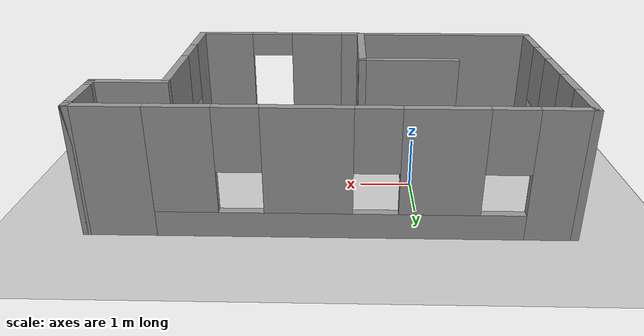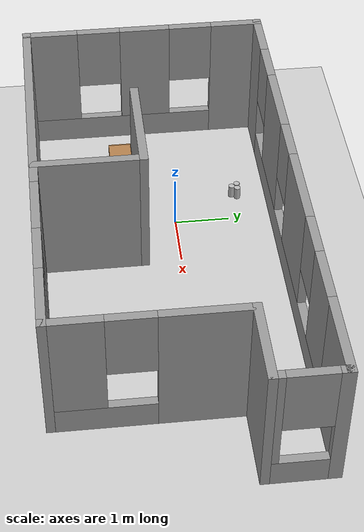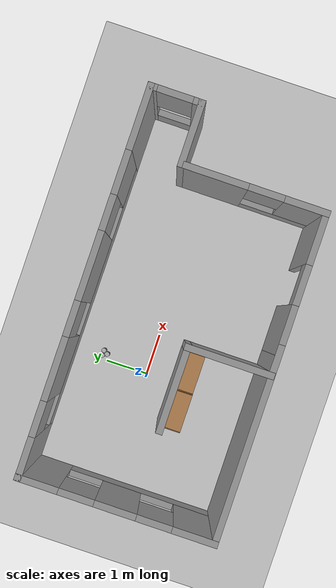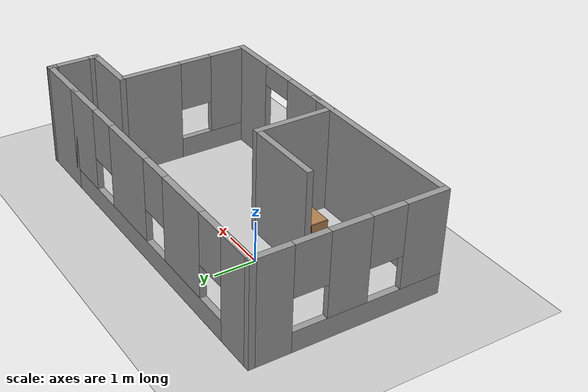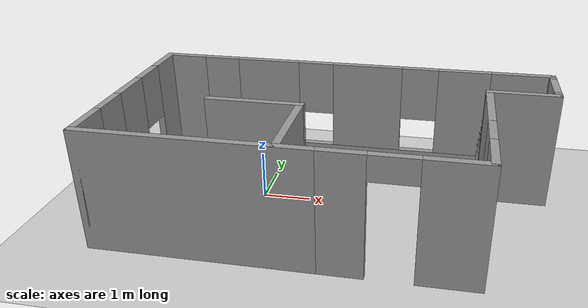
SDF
<sdf version="1.6">
 <world name="default">
  <light name="sun" type="directional">
   <pose>0 0 15 0 -0 0</pose>
   <diffuse>0.8 0.8 0.8 1</diffuse>
   <specular>0.2 0.2 0.2 1</specular>
   <attenuation>
    <range>1000</range>
    <constant>0.9</constant>
    <linear>0.01</linear>
    <quadratic>0.001</quadratic>
   </attenuation>
   <direction>-0.5 0.1 -0.9</direction>
  </light>
  <model name="ground_plane">
   <static>1</static>
   <link name="link">
    <collision name="collision">
     <geometry><plane><normal>0 0 1</normal><size>100 100</size></plane></geometry>
     <surface><friction><ode><mu>100</mu><mu2>50</mu2></ode></friction></surface>
    </collision>
    <visual name="visual">
     <transparency>1</transparency>
     <cast_shadows>0</cast_shadows>
     <geometry><plane><normal>0 0 1</normal><size>100 100</size></plane></geometry>
     <material>
      <script><uri>file://media/materials/scripts/gazebo.material</uri><name>Gazebo/Grey</name></script>
     </material>
    </visual>
   </link>
  </model>
  <gravity>0 0 -9.8</gravity>
  <magnetic_field>6e-06 2.3e-05 -4.2e-05</magnetic_field>
  <atmosphere type="adiabatic"/>
  <physics name="default_physics" default="0" type="ode">
   <max_step_size>0.001</max_step_size>
   <real_time_factor>1</real_time_factor>
   <real_time_update_rate>1000</real_time_update_rate>
  </physics>
  <scene><ambient>0.4 0.4 0.4 1</ambient><background>0.7 0.7 0.7 1</background><shadows>1</shadows></scene>
  <spherical_coordinates>
   <surface_model>EARTH_WGS84</surface_model>
   <latitude_deg>0</latitude_deg>
   <longitude_deg>0</longitude_deg>
   <elevation>0</elevation>
   <heading_deg>0</heading_deg>
  </spherical_coordinates>
  <model name="my_weird_house">
   <pose>1.61501 -0.331555 0 0 -0 0</pose>
   <link name="Wall_11">
    <collision name="Wall_11_Collision">
     <geometry><box><size>1.5 0.15 2.5</size></box></geometry>
     <pose>0 0 1.25 0 -0 0</pose>
    </collision>
    <visual name="Wall_11_Visual">
     <pose>0 0 1.25 0 -0 0</pose>
     <geometry><box><size>1.5 0.15 2.5</size></box></geometry>
     <material>
      <script><uri>file://media/materials/scripts/gazebo.material</uri><name>Gazebo/Grey</name></script>
      <ambient>1 1 1 1</ambient>
     </material>
     <meta><layer>0</layer></meta>
    </visual>
    <pose>3.675 2.185 0 0 -0 0</pose>
   </link>
   <link name="Wall_12">
    <pose>4.35 1.635 0 0 0 -1.5708</pose>
    <visual name="Wall_12_Visual_0">
     <pose>-0.5125 0 1.25 0 -0 0</pose>
     <geometry><box><size>0.225 0.15 2.5</size></box></geometry>
     <material>
      <script><uri>file://media/materials/scripts/gazebo.material</uri><name>Gazebo/Grey</name></script>
      <ambient>1 1 1 1</ambient>
     </material>
     <meta><layer>0</layer></meta>
    </visual>
    <collision name="Wall_12_Collision_0">
     <geometry><box><size>0.225 0.15 2.5</size></box></geometry>
     <pose>-0.5125 0 1.25 0 -0 0</pose>
    </collision>
    <visual name="Wall_12_Visual_1">
     <pose>0.1125 0 0.25 0 -0 0</pose>
     <geometry><box><size>1.025 0.15 0.5</size></box></geometry>
     <material>
      <script><uri>file://media/materials/scripts/gazebo.material</uri><name>Gazebo/Grey</name></script>
      <ambient>1 1 1 1</ambient>
     </material>
     <meta><layer>0</layer></meta>
    </visual>
    <collision name="Wall_12_Collision_1">
     <geometry><box><size>1.025 0.15 0.5</size></box></geometry>
     <pose>0.1125 0 0.25 0 -0 0</pose>
    </collision>
    <visual name="Wall_12_Visual_2">
     <pose>0.5125 0 1.5 0 -0 0</pose>
     <geometry><box><size>0.225 0.15 2</size></box></geometry>
     <material>
      <script><uri>file://media/materials/scripts/gazebo.material</uri><name>Gazebo/Grey</name></script>
      <ambient>1 1 1 1</ambient>
     </material>
     <meta><layer>0</layer></meta>
    </visual>
    <collision name="Wall_12_Collision_2">
     <geometry><box><size>0.225 0.15 2</size></box></geometry>
     <pose>0.5125 0 1.5 0 -0 0</pose>
    </collision>
    <visual name="Wall_12_Visual_3">
     <pose>0 0 1.9 0 -0 0</pose>
     <geometry><box><size>0.8 0.15 1.2</size></box></geometry>
     <material>
      <script><uri>file://media/materials/scripts/gazebo.material</uri><name>Gazebo/Grey</name></script>
      <ambient>1 1 1 1</ambient>
     </material>
     <meta><layer>0</layer></meta>
    </visual>
    <collision name="Wall_12_Collision_3">
     <geometry><box><size>0.8 0.15 1.2</size></box></geometry>
     <pose>0 0 1.9 0 -0 0</pose>
    </collision>
   </link>
   <link name="Wall_15">
    <pose>3 -0.625 0 0 0 -1.5708</pose>
    <visual name="Wall_15_Visual_0">
     <pose>-0.9025 0 1.25 0 -0 0</pose>
     <geometry><box><size>1.465 0.15 2.5</size></box></geometry>
     <material>
      <script><uri>file://media/materials/scripts/gazebo.material</uri><name>Gazebo/Grey</name></script>
      <ambient>1 1 1 1</ambient>
     </material>
     <meta><layer>0</layer></meta>
    </visual>
    <collision name="Wall_15_Collision_0">
     <geometry><box><size>1.465 0.15 2.5</size></box></geometry>
     <pose>-0.9025 0 1.25 0 -0 0</pose>
    </collision>
    <visual name="Wall_15_Visual_1">
     <pose>0.7325 0 0.25 0 -0 0</pose>
     <geometry><box><size>1.805 0.15 0.5</size></box></geometry>
     <material>
      <script><uri>file://media/materials/scripts/gazebo.material</uri><name>Gazebo/Grey</name></script>
      <ambient>1 1 1 1</ambient>
     </material>
     <meta><layer>0</layer></meta>
    </visual>
    <collision name="Wall_15_Collision_1">
     <geometry><box><size>1.805 0.15 0.5</size></box></geometry>
     <pose>0.7325 0 0.25 0 -0 0</pose>
    </collision>
    <visual name="Wall_15_Visual_2">
     <pose>1.1325 0 1.5 0 -0 0</pose>
     <geometry><box><size>1.005 0.15 2</size></box></geometry>
     <material>
      <script><uri>file://media/materials/scripts/gazebo.material</uri><name>Gazebo/Grey</name></script>
      <ambient>1 1 1 1</ambient>
     </material>
     <meta><layer>0</layer></meta>
    </visual>
    <collision name="Wall_15_Collision_2">
     <geometry><box><size>1.005 0.15 2</size></box></geometry>
     <pose>1.1325 0 1.5 0 -0 0</pose>
    </collision>
    <visual name="Wall_15_Visual_3">
     <pose>0.23 0 1.9 0 -0 0</pose>
     <geometry><box><size>0.8 0.15 1.2</size></box></geometry>
     <material>
      <script><uri>file://media/materials/scripts/gazebo.material</uri><name>Gazebo/Grey</name></script>
      <ambient>1 1 1 1</ambient>
     </material>
     <meta><layer>0</layer></meta>
    </visual>
    <collision name="Wall_15_Collision_3">
     <geometry><box><size>0.8 0.15 1.2</size></box></geometry>
     <pose>0.23 0 1.9 0 -0 0</pose>
    </collision>
   </link>
   <link name="Wall_18">
    <collision name="Wall_18_Collision">
     <geometry><box><size>1.5 0.15 2.5</size></box></geometry>
     <pose>0 0 1.25 0 -0 0</pose>
    </collision>
    <visual name="Wall_18_Visual">
     <pose>0 0 1.25 0 -0 0</pose>
     <geometry><box><size>1.5 0.15 2.5</size></box></geometry>
     <material>
      <script><uri>file://media/materials/scripts/gazebo.material</uri><name>Gazebo/Grey</name></script>
      <ambient>1 1 1 1</ambient>
     </material>
     <meta><layer>0</layer></meta>
    </visual>
    <pose>3.675 1.045 0 0 -0 0</pose>
   </link>
   <link name="Wall_2">
    <pose>-4.35 0 0 0 0 -1.5708</pose>
    <visual name="Wall_2_Visual_0">
     <pose>-1.77956 0 1.25 0 -0 0</pose>
     <geometry><box><size>0.960885 0.15 2.5</size></box></geometry>
     <material>
      <script><uri>file://media/materials/scripts/gazebo.material</uri><name>Gazebo/Grey</name></script>
      <ambient>1 1 1 1</ambient>
     </material>
     <meta><layer>0</layer></meta>
    </visual>
    <collision name="Wall_2_Collision_0">
     <geometry><box><size>0.960885 0.15 2.5</size></box></geometry>
     <pose>-1.77956 0 1.25 0 -0 0</pose>
    </collision>
    <visual name="Wall_2_Visual_1">
     <pose>0.480442 0 0.25 0 -0 0</pose>
     <geometry><box><size>3.55911 0.15 0.5</size></box></geometry>
     <material>
      <script><uri>file://media/materials/scripts/gazebo.material</uri><name>Gazebo/Grey</name></script>
      <ambient>1 1 1 1</ambient>
     </material>
     <meta><layer>0</layer></meta>
    </visual>
    <collision name="Wall_2_Collision_1">
     <geometry><box><size>3.55911 0.15 0.5</size></box></geometry>
     <pose>0.480442 0 0.25 0 -0 0</pose>
    </collision>
    <visual name="Wall_2_Visual_2">
     <pose>-0.030138 0 1.5 0 -0 0</pose>
     <geometry><box><size>0.937954 0.15 2</size></box></geometry>
     <material>
      <script><uri>file://media/materials/scripts/gazebo.material</uri><name>Gazebo/Grey</name></script>
      <ambient>1 1 1 1</ambient>
     </material>
     <meta><layer>0</layer></meta>
    </visual>
    <collision name="Wall_2_Collision_2">
     <geometry><box><size>0.937954 0.15 2</size></box></geometry>
     <pose>-0.030138 0 1.5 0 -0 0</pose>
    </collision>
    <visual name="Wall_2_Visual_3">
     <pose>1.74942 0 1.5 0 -0 0</pose>
     <geometry><box><size>1.02116 0.15 2</size></box></geometry>
     <material>
      <script><uri>file://media/materials/scripts/gazebo.material</uri><name>Gazebo/Grey</name></script>
      <ambient>1 1 1 1</ambient>
     </material>
     <meta><layer>0</layer></meta>
    </visual>
    <collision name="Wall_2_Collision_3">
     <geometry><box><size>1.02116 0.15 2</size></box></geometry>
     <pose>1.74942 0 1.5 0 -0 0</pose>
    </collision>
    <visual name="Wall_2_Visual_4">
     <pose>-0.899115 0 1.9 0 -0 0</pose>
     <geometry><box><size>0.8 0.15 1.2</size></box></geometry>
     <material>
      <script><uri>file://media/materials/scripts/gazebo.material</uri><name>Gazebo/Grey</name></script>
      <ambient>1 1 1 1</ambient>
     </material>
     <meta><layer>0</layer></meta>
    </visual>
    <collision name="Wall_2_Collision_4">
     <geometry><box><size>0.8 0.15 1.2</size></box></geometry>
     <pose>-0.899115 0 1.9 0 -0 0</pose>
    </collision>
    <visual name="Wall_2_Visual_5">
     <pose>0.838839 0 1.9 0 -0 0</pose>
     <geometry><box><size>0.8 0.15 1.2</size></box></geometry>
     <material>
      <script><uri>file://media/materials/scripts/gazebo.material</uri><name>Gazebo/Grey</name></script>
      <ambient>1 1 1 1</ambient>
     </material>
     <meta><layer>0</layer></meta>
    </visual>
    <collision name="Wall_2_Collision_5">
     <geometry><box><size>0.8 0.15 1.2</size></box></geometry>
     <pose>0.838839 0 1.9 0 -0 0</pose>
    </collision>
   </link>
   <link name="Wall_20">
    <collision name="Wall_20_Collision">
     <geometry><box><size>2 0.15 2.5</size></box></geometry>
     <pose>0 0 1.25 0 -0 0</pose>
    </collision>
    <visual name="Wall_20_Visual">
     <pose>0 0 1.25 0 -0 0</pose>
     <geometry><box><size>2 0.15 2.5</size></box></geometry>
     <material>
      <script><uri>file://media/materials/scripts/gazebo.material</uri><name>Gazebo/Grey</name></script>
      <ambient>1 1 1 1</ambient>
     </material>
     <meta><layer>0</layer></meta>
    </visual>
    <pose>-0.61 -1.25 0 0 -0 1.5708</pose>
   </link>
   <link name="Wall_21">
    <collision name="Wall_21_Collision">
     <geometry><box><size>2 0.15 2.5</size></box></geometry>
     <pose>0 0 1.25 0 -0 0</pose>
    </collision>
    <visual name="Wall_21_Visual">
     <pose>0 0 1.25 0 -0 0</pose>
     <geometry><box><size>2 0.15 2.5</size></box></geometry>
     <material>
      <script><uri>file://media/materials/scripts/gazebo.material</uri><name>Gazebo/Grey</name></script>
      <ambient>1 1 1 1</ambient>
     </material>
     <meta><layer>0</layer></meta>
    </visual>
    <pose>-1.535 -0.325 0 0 -0 3.14159</pose>
   </link>
   <link name="Wall_3">
    <collision name="Wall_3_Collision">
     <geometry><box><size>4.5 0.15 2.5</size></box></geometry>
     <pose>0 0 1.25 0 -0 0</pose>
    </collision>
    <visual name="Wall_3_Visual">
     <pose>0 0 1.25 0 -0 0</pose>
     <geometry><box><size>4.5 0.15 2.5</size></box></geometry>
     <material>
      <script><uri>file://media/materials/scripts/gazebo.material</uri><name>Gazebo/Grey</name></script>
      <ambient>1 1 1 1</ambient>
     </material>
     <meta><layer>0</layer></meta>
    </visual>
    <pose>-2.175 -2.185 0 0 -0 0</pose>
   </link>
   <link name="Wall_7">
    <pose>-0.675 2.185 0 0 -0 0</pose>
    <visual name="Wall_7_Visual_0">
     <pose>-3.2625 0 1.25 0 -0 0</pose>
     <geometry><box><size>0.975 0.15 2.5</size></box></geometry>
     <material>
      <script><uri>file://media/materials/scripts/gazebo.material</uri><name>Gazebo/Grey</name></script>
      <ambient>1 1 1 1</ambient>
     </material>
     <meta><layer>0</layer></meta>
    </visual>
    <collision name="Wall_7_Collision_0">
     <geometry><box><size>0.975 0.15 2.5</size></box></geometry>
     <pose>-3.2625 0 1.25 0 -0 0</pose>
    </collision>
    <visual name="Wall_7_Visual_1">
     <pose>0.4875 0 0.25 0 -0 0</pose>
     <geometry><box><size>6.525 0.15 0.5</size></box></geometry>
     <material>
      <script><uri>file://media/materials/scripts/gazebo.material</uri><name>Gazebo/Grey</name></script>
      <ambient>1 1 1 1</ambient>
     </material>
     <meta><layer>0</layer></meta>
    </visual>
    <collision name="Wall_7_Collision_1">
     <geometry><box><size>6.525 0.15 0.5</size></box></geometry>
     <pose>0.4875 0 0.25 0 -0 0</pose>
    </collision>
    <visual name="Wall_7_Visual_2">
     <pose>-1.26 0 1.5 0 -0 0</pose>
     <geometry><box><size>1.43 0.15 2</size></box></geometry>
     <material>
      <script><uri>file://media/materials/scripts/gazebo.material</uri><name>Gazebo/Grey</name></script>
      <ambient>1 1 1 1</ambient>
     </material>
     <meta><layer>0</layer></meta>
    </visual>
    <collision name="Wall_7_Collision_2">
     <geometry><box><size>1.43 0.15 2</size></box></geometry>
     <pose>-1.26 0 1.5 0 -0 0</pose>
    </collision>
    <visual name="Wall_7_Visual_3">
     <pose>1.035 0 1.5 0 -0 0</pose>
     <geometry><box><size>1.56 0.15 2</size></box></geometry>
     <material>
      <script><uri>file://media/materials/scripts/gazebo.material</uri><name>Gazebo/Grey</name></script>
      <ambient>1 1 1 1</ambient>
     </material>
     <meta><layer>0</layer></meta>
    </visual>
    <collision name="Wall_7_Collision_3">
     <geometry><box><size>1.56 0.15 2</size></box></geometry>
     <pose>1.035 0 1.5 0 -0 0</pose>
    </collision>
    <visual name="Wall_7_Visual_4">
     <pose>3.1825 0 1.5 0 -0 0</pose>
     <geometry><box><size>1.135 0.15 2</size></box></geometry>
     <material>
      <script><uri>file://media/materials/scripts/gazebo.material</uri><name>Gazebo/Grey</name></script>
      <ambient>1 1 1 1</ambient>
     </material>
     <meta><layer>0</layer></meta>
    </visual>
    <collision name="Wall_7_Collision_4">
     <geometry><box><size>1.135 0.15 2</size></box></geometry>
     <pose>3.1825 0 1.5 0 -0 0</pose>
    </collision>
    <visual name="Wall_7_Visual_5">
     <pose>-2.375 0 1.9 0 -0 0</pose>
     <geometry><box><size>0.8 0.15 1.2</size></box></geometry>
     <material>
      <script><uri>file://media/materials/scripts/gazebo.material</uri><name>Gazebo/Grey</name></script>
      <ambient>1 1 1 1</ambient>
     </material>
     <meta><layer>0</layer></meta>
    </visual>
    <collision name="Wall_7_Collision_5">
     <geometry><box><size>0.8 0.15 1.2</size></box></geometry>
     <pose>-2.375 0 1.9 0 -0 0</pose>
    </collision>
    <visual name="Wall_7_Visual_6">
     <pose>-0.145 0 1.9 0 -0 0</pose>
     <geometry><box><size>0.8 0.15 1.2</size></box></geometry>
     <material>
      <script><uri>file://media/materials/scripts/gazebo.material</uri><name>Gazebo/Grey</name></script>
      <ambient>1 1 1 1</ambient>
     </material>
     <meta><layer>0</layer></meta>
    </visual>
    <collision name="Wall_7_Collision_6">
     <geometry><box><size>0.8 0.15 1.2</size></box></geometry>
     <pose>-0.145 0 1.9 0 -0 0</pose>
    </collision>
    <visual name="Wall_7_Visual_7">
     <pose>2.215 0 1.9 0 -0 0</pose>
     <geometry><box><size>0.8 0.15 1.2</size></box></geometry>
     <material>
      <script><uri>file://media/materials/scripts/gazebo.material</uri><name>Gazebo/Grey</name></script>
      <ambient>1 1 1 1</ambient>
     </material>
     <meta><layer>0</layer></meta>
    </visual>
    <collision name="Wall_7_Collision_7">
     <geometry><box><size>0.8 0.15 1.2</size></box></geometry>
     <pose>2.215 0 1.9 0 -0 0</pose>
    </collision>
   </link>
   <link name="Wall_9">
    <pose>1.45 -2.185 0 0 -0 3.14159</pose>
    <visual name="Wall_9_Visual_0">
     <pose>-1.0125 0 1.25 0 -0 0</pose>
     <geometry><box><size>1.225 0.15 2.5</size></box></geometry>
     <material>
      <script><uri>file://media/materials/scripts/gazebo.material</uri><name>Gazebo/Grey</name></script>
      <ambient>1 1 1 1</ambient>
     </material>
     <meta><layer>0</layer></meta>
    </visual>
    <collision name="Wall_9_Collision_0">
     <geometry><box><size>1.225 0.15 2.5</size></box></geometry>
     <pose>-1.0125 0 1.25 0 -0 0</pose>
    </collision>
    <visual name="Wall_9_Visual_1">
     <pose>1.0625 0 1.25 0 -0 0</pose>
     <geometry><box><size>1.125 0.15 2.5</size></box></geometry>
     <material>
      <script><uri>file://media/materials/scripts/gazebo.material</uri><name>Gazebo/Grey</name></script>
      <ambient>1 1 1 1</ambient>
     </material>
     <meta><layer>0</layer></meta>
    </visual>
    <collision name="Wall_9_Collision_1">
     <geometry><box><size>1.125 0.15 2.5</size></box></geometry>
     <pose>1.0625 0 1.25 0 -0 0</pose>
    </collision>
    <visual name="Wall_9_Visual_2">
     <pose>0.05 0 2.25 0 -0 0</pose>
     <geometry><box><size>0.9 0.15 0.5</size></box></geometry>
     <material>
      <script><uri>file://media/materials/scripts/gazebo.material</uri><name>Gazebo/Grey</name></script>
      <ambient>1 1 1 1</ambient>
     </material>
     <meta><layer>0</layer></meta>
    </visual>
    <collision name="Wall_9_Collision_2">
     <geometry><box><size>0.9 0.15 0.5</size></box></geometry>
     <pose>0.05 0 2.25 0 -0 0</pose>
    </collision>
   </link>
   <static>1</static>
  </model>
  <model name="bookshelf">
   <static>1</static>
   <link name="link">
    <inertial><mass>1</mass></inertial>
    <collision name="back">
     <pose>0 0.005 0.6 0 -0 0</pose>
     <geometry><box><size>0.9 0.01 1.2</size></box></geometry>
    </collision>
    <visual name="visual1">
     <pose>0 0.005 0.6 0 -0 0</pose>
     <geometry><box><size>0.9 0.01 1.2</size></box></geometry>
     <material>
      <script><uri>file://media/materials/scripts/gazebo.material</uri><name>Gazebo/Wood</name></script>
     </material>
    </visual>
    <collision name="left_side">
     <pose>0.45 -0.195 0.6 0 -0 0</pose>
     <geometry><box><size>0.02 0.4 1.2</size></box></geometry>
    </collision>
    <visual name="visual2">
     <pose>0.45 -0.195 0.6 0 -0 0</pose>
     <geometry><box><size>0.02 0.4 1.2</size></box></geometry>
     <material>
      <script><uri>file://media/materials/scripts/gazebo.material</uri><name>Gazebo/Wood</name></script>
     </material>
    </visual>
    <collision name="right_side">
     <pose>-0.45 -0.195 0.6 0 -0 0</pose>
     <geometry><box><size>0.02 0.4 1.2</size></box></geometry>
    </collision>
    <visual name="visual3">
     <pose>-0.45 -0.195 0.6 0 -0 0</pose>
     <geometry><box><size>0.02 0.4 1.2</size></box></geometry>
     <material>
      <script><uri>file://media/materials/scripts/gazebo.material</uri><name>Gazebo/Wood</name></script>
     </material>
    </visual>
    <collision name="bottom">
     <pose>0 -0.195 0.03 0 -0 0</pose>
     <geometry><box><size>0.88 0.4 0.06</size></box></geometry>
    </collision>
    <visual name="visual4">
     <pose>0 -0.195 0.03 0 -0 0</pose>
     <geometry><box><size>0.88 0.4 0.06</size></box></geometry>
     <material>
      <script><uri>file://media/materials/scripts/gazebo.material</uri><name>Gazebo/Wood</name></script>
     </material>
    </visual>
    <collision name="top">
     <pose>0 -0.195 1.19 0 -0 0</pose>
     <geometry><box><size>0.88 0.4 0.02</size></box></geometry>
    </collision>
    <visual name="visual5">
     <pose>0 -0.195 1.19 0 -0 0</pose>
     <geometry><box><size>0.88 0.4 0.02</size></box></geometry>
     <material>
      <script><uri>file://media/materials/scripts/gazebo.material</uri><name>Gazebo/Wood</name></script>
     </material>
    </visual>
    <collision name="low_shelf">
     <pose>0 -0.195 0.43 0 -0 0</pose>
     <geometry><box><size>0.88 0.4 0.02</size></box></geometry>
    </collision>
    <visual name="visual6">
     <pose>0 -0.195 0.43 0 -0 0</pose>
     <geometry><box><size>0.88 0.4 0.02</size></box></geometry>
     <material>
      <script><uri>file://media/materials/scripts/gazebo.material</uri><name>Gazebo/Wood</name></script>
     </material>
    </visual>
    <collision name="high_shelf">
     <pose>0 -0.195 0.8 0 -0 0</pose>
     <geometry><box><size>0.88 0.4 0.02</size></box></geometry>
    </collision>
    <visual name="visual7">
     <pose>0 -0.195 0.8 0 -0 0</pose>
     <geometry><box><size>0.88 0.4 0.02</size></box></geometry>
     <material>
      <script><uri>file://media/materials/scripts/gazebo.material</uri><name>Gazebo/Wood</name></script>
     </material>
    </visual>
   </link>
   <pose>0.439695 -0.74494 0 0 -0 0</pose>
  </model>
  <model name="bookshelf_0">
   <static>1</static>
   <link name="link">
    <inertial><mass>1</mass></inertial>
    <collision name="back">
     <pose>0 0.005 0.6 0 -0 0</pose>
     <geometry><box><size>0.9 0.01 1.2</size></box></geometry>
    </collision>
    <visual name="visual1">
     <pose>0 0.005 0.6 0 -0 0</pose>
     <geometry><box><size>0.9 0.01 1.2</size></box></geometry>
     <material>
      <script><uri>file://media/materials/scripts/gazebo.material</uri><name>Gazebo/Wood</name></script>
     </material>
    </visual>
    <collision name="left_side">
     <pose>0.45 -0.195 0.6 0 -0 0</pose>
     <geometry><box><size>0.02 0.4 1.2</size></box></geometry>
    </collision>
    <visual name="visual2">
     <pose>0.45 -0.195 0.6 0 -0 0</pose>
     <geometry><box><size>0.02 0.4 1.2</size></box></geometry>
     <material>
      <script><uri>file://media/materials/scripts/gazebo.material</uri><name>Gazebo/Wood</name></script>
     </material>
    </visual>
    <collision name="right_side">
     <pose>-0.45 -0.195 0.6 0 -0 0</pose>
     <geometry><box><size>0.02 0.4 1.2</size></box></geometry>
    </collision>
    <visual name="visual3">
     <pose>-0.45 -0.195 0.6 0 -0 0</pose>
     <geometry><box><size>0.02 0.4 1.2</size></box></geometry>
     <material>
      <script><uri>file://media/materials/scripts/gazebo.material</uri><name>Gazebo/Wood</name></script>
     </material>
    </visual>
    <collision name="bottom">
     <pose>0 -0.195 0.03 0 -0 0</pose>
     <geometry><box><size>0.88 0.4 0.06</size></box></geometry>
    </collision>
    <visual name="visual4">
     <pose>0 -0.195 0.03 0 -0 0</pose>
     <geometry><box><size>0.88 0.4 0.06</size></box></geometry>
     <material>
      <script><uri>file://media/materials/scripts/gazebo.material</uri><name>Gazebo/Wood</name></script>
     </material>
    </visual>
    <collision name="top">
     <pose>0 -0.195 1.19 0 -0 0</pose>
     <geometry><box><size>0.88 0.4 0.02</size></box></geometry>
    </collision>
    <visual name="visual5">
     <pose>0 -0.195 1.19 0 -0 0</pose>
     <geometry><box><size>0.88 0.4 0.02</size></box></geometry>
     <material>
      <script><uri>file://media/materials/scripts/gazebo.material</uri><name>Gazebo/Wood</name></script>
     </material>
    </visual>
    <collision name="low_shelf">
     <pose>0 -0.195 0.43 0 -0 0</pose>
     <geometry><box><size>0.88 0.4 0.02</size></box></geometry>
    </collision>
    <visual name="visual6">
     <pose>0 -0.195 0.43 0 -0 0</pose>
     <geometry><box><size>0.88 0.4 0.02</size></box></geometry>
     <material>
      <script><uri>file://media/materials/scripts/gazebo.material</uri><name>Gazebo/Wood</name></script>
     </material>
    </visual>
    <collision name="high_shelf">
     <pose>0 -0.195 0.8 0 -0 0</pose>
     <geometry><box><size>0.88 0.4 0.02</size></box></geometry>
    </collision>
    <visual name="visual7">
     <pose>0 -0.195 0.8 0 -0 0</pose>
     <geometry><box><size>0.88 0.4 0.02</size></box></geometry>
     <material>
      <script><uri>file://media/materials/scripts/gazebo.material</uri><name>Gazebo/Wood</name></script>
     </material>
    </visual>
   </link>
   <pose>-0.473193 -0.748594 0 0 -0 0</pose>
  </model>
  <model name="beer">
   <link name="link">
    <pose>0 0 0.115 0 -0 0</pose>
    <inertial>
     <mass>0.39</mass>
     <inertia><ixx>0.00058</ixx><ixy>0</ixy><ixz>0</ixz><iyy>0.00058</iyy><iyz>0</iyz><izz>0.00019</izz></inertia>
    </inertial>
    <collision name="collision">
     <geometry><cylinder><radius>0.055</radius><length>0.23</length></cylinder></geometry>
    </collision>
    <visual name="visual">
     <geometry><cylinder><radius>0.055</radius><length>0.23</length></cylinder></geometry>
     <material>
      <script>
       <uri>model://beer/materials/scripts</uri>
       <uri>model://beer/materials/textures</uri>
       <name>Beer/Diffuse</name>
      </script>
     </material>
    </visual>
   </link>
   <pose>0.159977 1.0967 0.775001 -7e-06 2.5e-05 0.000756</pose>
  </model>
  <model name="beer_0">
   <link name="link">
    <pose>0 0 0.115 0 -0 0</pose>
    <inertial>
     <mass>0.39</mass>
     <inertia><ixx>0.00058</ixx><ixy>0</ixy><ixz>0</ixz><iyy>0.00058</iyy><iyz>0</iyz><izz>0.00019</izz></inertia>
    </inertial>
    <collision name="collision">
     <geometry><cylinder><radius>0.055</radius><length>0.23</length></cylinder></geometry>
    </collision>
    <visual name="visual">
     <geometry><cylinder><radius>0.055</radius><length>0.23</length></cylinder></geometry>
     <material>
      <script>
       <uri>model://beer/materials/scripts</uri>
       <uri>model://beer/materials/textures</uri>
       <name>Beer/Diffuse</name>
      </script>
     </material>
    </visual>
   </link>
   <pose>0.275956 1.09538 0.775001 9e-06 2e-05 0.000847</pose>
  </model>
  <model name="beer_1">
   <link name="link">
    <pose>0 0 0.115 0 -0 0</pose>
    <inertial>
     <mass>0.39</mass>
     <inertia><ixx>0.00058</ixx><ixy>0</ixy><ixz>0</ixz><iyy>0.00058</iyy><iyz>0</iyz><izz>0.00019</izz></inertia>
    </inertial>
    <collision name="collision">
     <geometry><cylinder><radius>0.055</radius><length>0.23</length></cylinder></geometry>
    </collision>
    <visual name="visual">
     <geometry><cylinder><radius>0.055</radius><length>0.23</length></cylinder></geometry>
     <material>
      <script>
       <uri>model://beer/materials/scripts</uri>
       <uri>model://beer/materials/textures</uri>
       <name>Beer/Diffuse</name>
      </script>
     </material>
    </visual>
   </link>
   <pose>0.217996 0.999745 0.77499 9e-06 1e-06 0.001113</pose>
  </model>
 </world>
</sdf>
